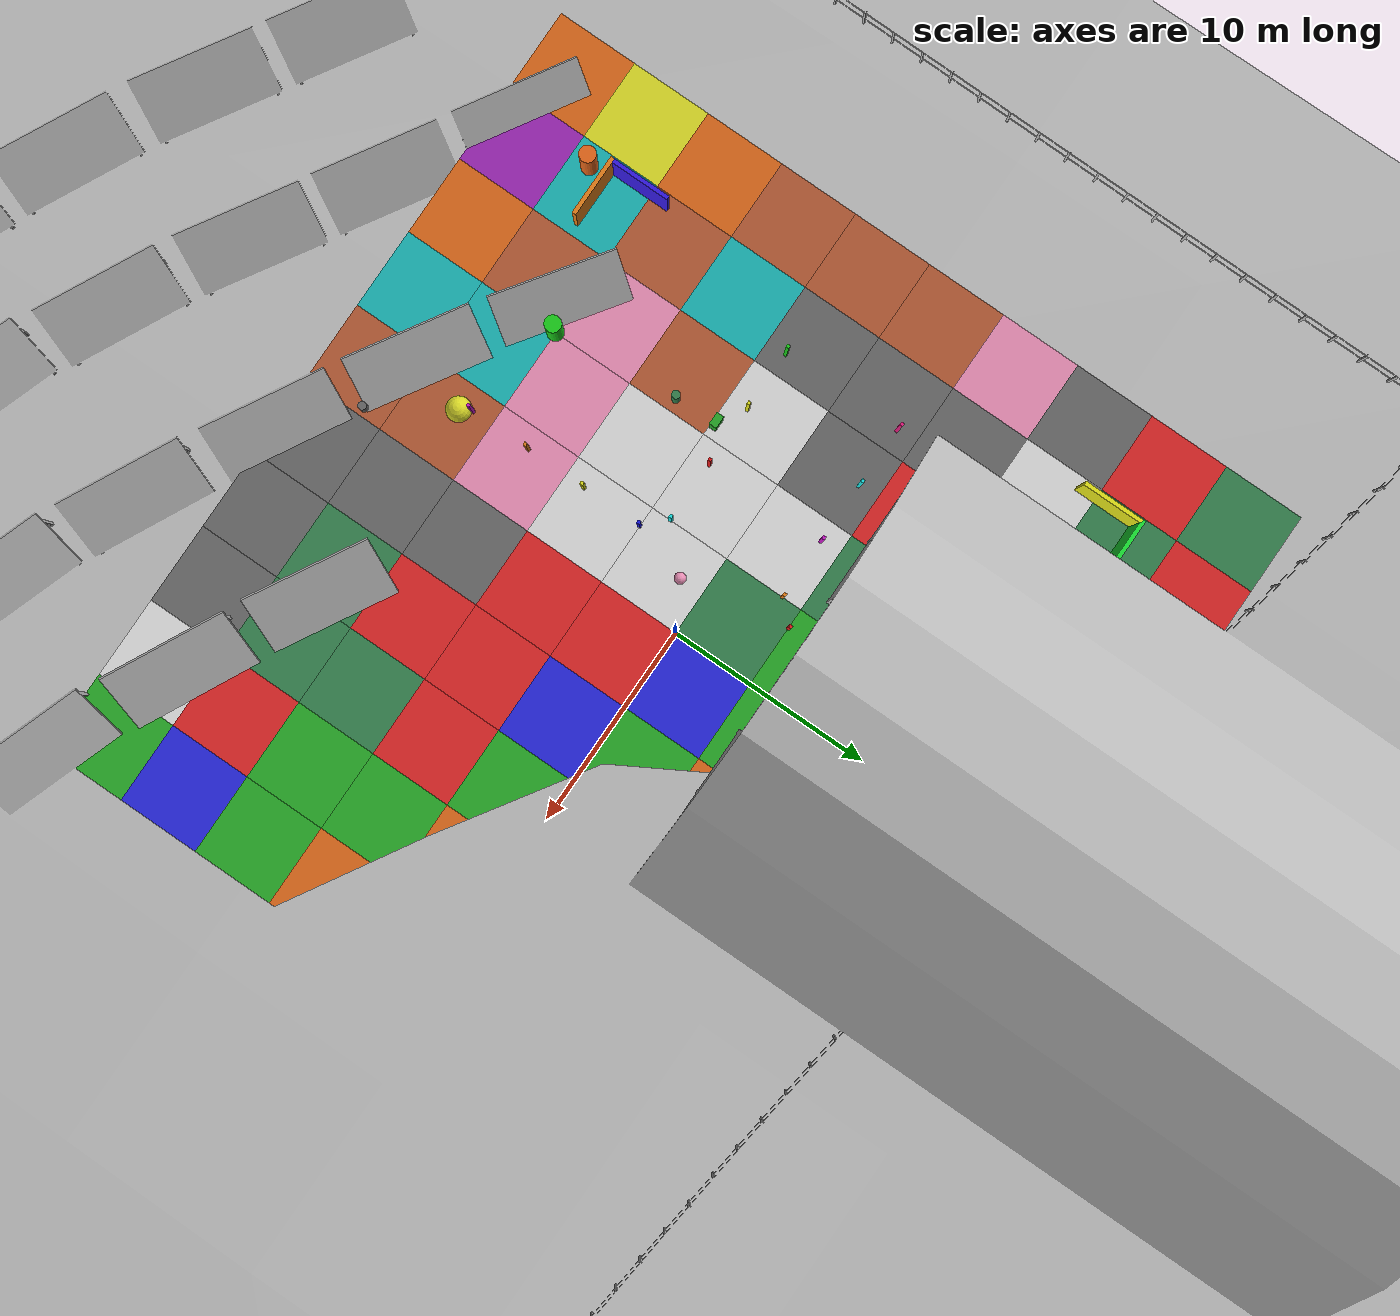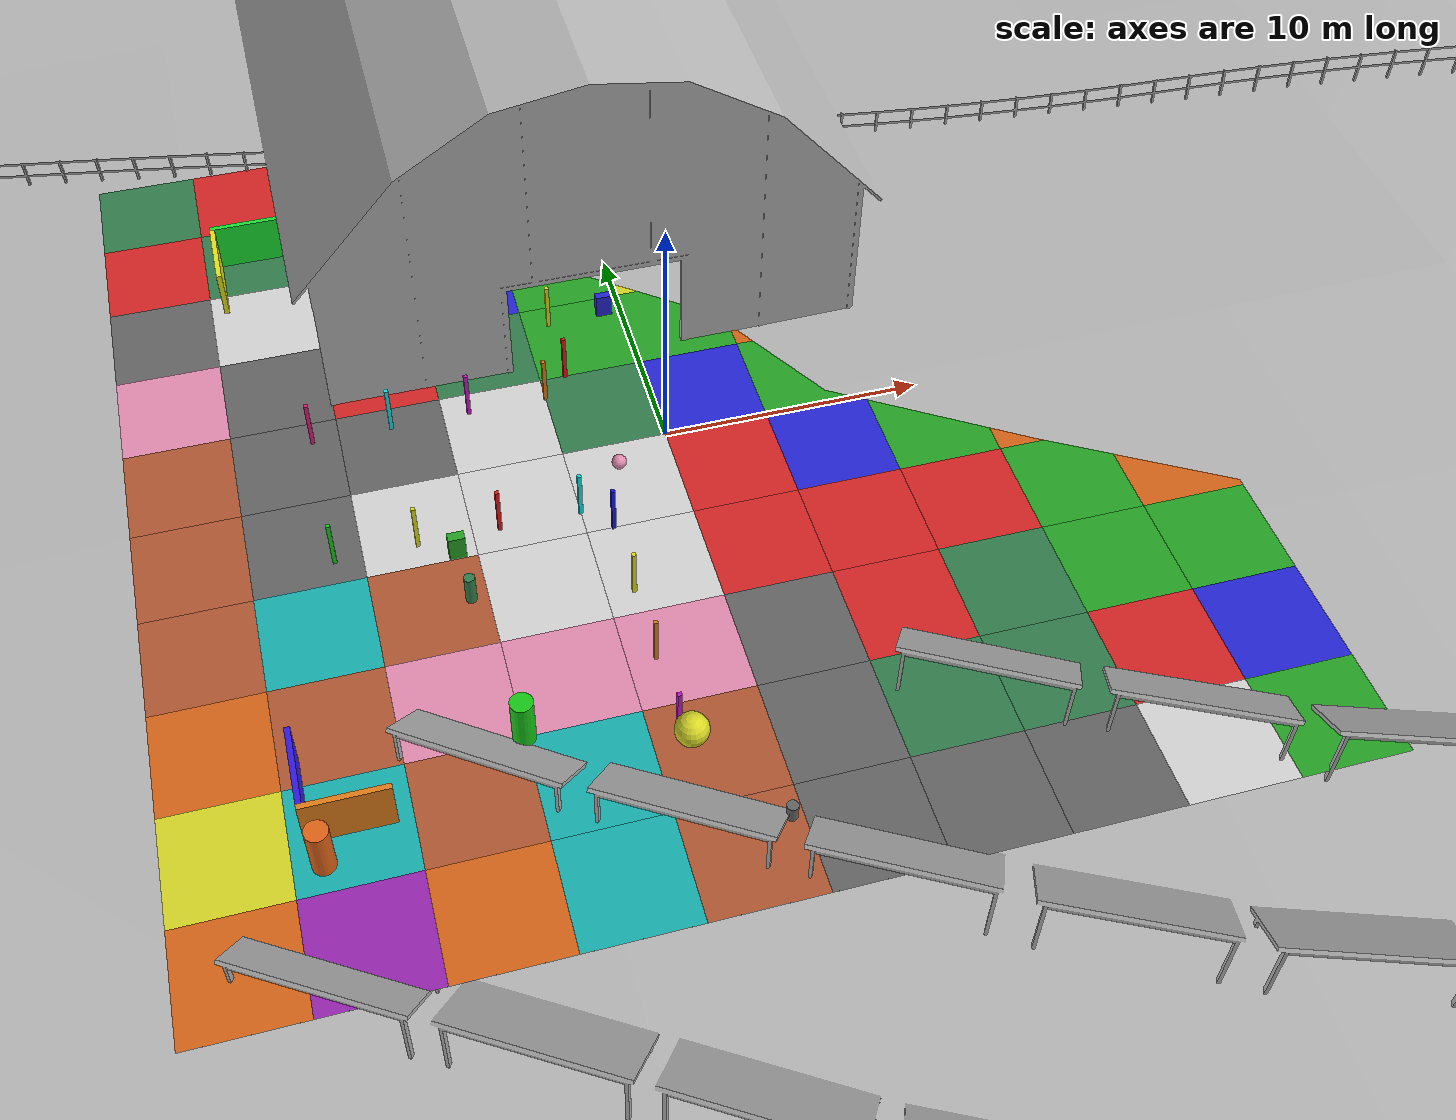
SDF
<sdf version="1.9">
 <world name="default">
  <model name="agriculture_geom">
   <static>true</static>
   <link name="agriculture_world_link">
    <visual name="agriculture_world_link_visual">
     <geometry>
      <mesh><scale>1 1 1</scale><uri>model://cpr_agriculture/meshes/agriculture_world.dae</uri></mesh>
     </geometry>
    </visual>
    <collision name="agriculture_world_link_collision">
     <geometry>
      <mesh><scale>1 1 1</scale><uri>model://cpr_agriculture/meshes/agriculture_world.dae</uri></mesh>
     </geometry>
     <surface><friction><ode><mu>1.0</mu><mu2>1.0</mu2></ode></friction></surface>
    </collision>
   </link>
  </model>
  <model name="vo_ground_texture_patches">
   <static>true</static>
   <link name="tile_1">
    <pose>-18.00 -18.00 0.0002 0 0 0</pose>
    <visual name="v">
     <geometry><box><size>4.0 4.0 0.0004</size></box></geometry>
     <material><ambient>0.85 0.40 0.10 1</ambient><diffuse>0.85 0.40 0.10 1</diffuse></material>
    </visual>
   </link>
   <link name="tile_2">
    <pose>-18.00 -14.00 0.0002 0 0 0</pose>
    <visual name="v">
     <geometry><box><size>4.0 4.0 0.0004</size></box></geometry>
     <material><ambient>0.85 0.85 0.15 1</ambient><diffuse>0.85 0.85 0.15 1</diffuse></material>
    </visual>
   </link>
   <link name="tile_3">
    <pose>-18.00 -10.00 0.0002 0 0 0</pose>
    <visual name="v">
     <geometry><box><size>4.0 4.0 0.0004</size></box></geometry>
     <material><ambient>0.85 0.40 0.10 1</ambient><diffuse>0.85 0.40 0.10 1</diffuse></material>
    </visual>
   </link>
   <link name="tile_4">
    <pose>-18.00 -6.00 0.0002 0 0 0</pose>
    <visual name="v">
     <geometry><box><size>4.0 4.0 0.0004</size></box></geometry>
     <material><ambient>0.70 0.35 0.20 1</ambient><diffuse>0.70 0.35 0.20 1</diffuse></material>
    </visual>
   </link>
   <link name="tile_5">
    <pose>-18.00 -2.00 0.0002 0 0 0</pose>
    <visual name="v">
     <geometry><box><size>4.0 4.0 0.0004</size></box></geometry>
     <material><ambient>0.70 0.35 0.20 1</ambient><diffuse>0.70 0.35 0.20 1</diffuse></material>
    </visual>
   </link>
   <link name="tile_6">
    <pose>-18.00 2.00 0.0002 0 0 0</pose>
    <visual name="v">
     <geometry><box><size>4.0 4.0 0.0004</size></box></geometry>
     <material><ambient>0.70 0.35 0.20 1</ambient><diffuse>0.70 0.35 0.20 1</diffuse></material>
    </visual>
   </link>
   <link name="tile_7">
    <pose>-18.00 6.00 0.0002 0 0 0</pose>
    <visual name="v">
     <geometry><box><size>4.0 4.0 0.0004</size></box></geometry>
     <material><ambient>0.90 0.55 0.70 1</ambient><diffuse>0.90 0.55 0.70 1</diffuse></material>
    </visual>
   </link>
   <link name="tile_8">
    <pose>-18.00 10.00 0.0002 0 0 0</pose>
    <visual name="v">
     <geometry><box><size>4.0 4.0 0.0004</size></box></geometry>
     <material><ambient>0.40 0.40 0.40 1</ambient><diffuse>0.40 0.40 0.40 1</diffuse></material>
    </visual>
   </link>
   <link name="tile_9">
    <pose>-18.00 14.00 0.0002 0 0 0</pose>
    <visual name="v">
     <geometry><box><size>4.0 4.0 0.0004</size></box></geometry>
     <material><ambient>0.85 0.15 0.15 1</ambient><diffuse>0.85 0.15 0.15 1</diffuse></material>
    </visual>
   </link>
   <link name="tile_10">
    <pose>-18.00 18.00 0.0002 0 0 0</pose>
    <visual name="v">
     <geometry><box><size>4.0 4.0 0.0004</size></box></geometry>
     <material><ambient>0.20 0.50 0.30 1</ambient><diffuse>0.20 0.50 0.30 1</diffuse></material>
    </visual>
   </link>
   <link name="tile_11">
    <pose>-14.00 -18.00 0.0002 0 0 0</pose>
    <visual name="v">
     <geometry><box><size>4.0 4.0 0.0004</size></box></geometry>
     <material><ambient>0.60 0.15 0.70 1</ambient><diffuse>0.60 0.15 0.70 1</diffuse></material>
    </visual>
   </link>
   <link name="tile_12">
    <pose>-14.00 -14.00 0.0002 0 0 0</pose>
    <visual name="v">
     <geometry><box><size>4.0 4.0 0.0004</size></box></geometry>
     <material><ambient>0.10 0.70 0.70 1</ambient><diffuse>0.10 0.70 0.70 1</diffuse></material>
    </visual>
   </link>
   <link name="tile_13">
    <pose>-14.00 -10.00 0.0002 0 0 0</pose>
    <visual name="v">
     <geometry><box><size>4.0 4.0 0.0004</size></box></geometry>
     <material><ambient>0.70 0.35 0.20 1</ambient><diffuse>0.70 0.35 0.20 1</diffuse></material>
    </visual>
   </link>
   <link name="tile_14">
    <pose>-14.00 -6.00 0.0002 0 0 0</pose>
    <visual name="v">
     <geometry><box><size>4.0 4.0 0.0004</size></box></geometry>
     <material><ambient>0.10 0.70 0.70 1</ambient><diffuse>0.10 0.70 0.70 1</diffuse></material>
    </visual>
   </link>
   <link name="tile_15">
    <pose>-14.00 -2.00 0.0002 0 0 0</pose>
    <visual name="v">
     <geometry><box><size>4.0 4.0 0.0004</size></box></geometry>
     <material><ambient>0.40 0.40 0.40 1</ambient><diffuse>0.40 0.40 0.40 1</diffuse></material>
    </visual>
   </link>
   <link name="tile_16">
    <pose>-14.00 2.00 0.0002 0 0 0</pose>
    <visual name="v">
     <geometry><box><size>4.0 4.0 0.0004</size></box></geometry>
     <material><ambient>0.40 0.40 0.40 1</ambient><diffuse>0.40 0.40 0.40 1</diffuse></material>
    </visual>
   </link>
   <link name="tile_17">
    <pose>-14.00 6.00 0.0002 0 0 0</pose>
    <visual name="v">
     <geometry><box><size>4.0 4.0 0.0004</size></box></geometry>
     <material><ambient>0.40 0.40 0.40 1</ambient><diffuse>0.40 0.40 0.40 1</diffuse></material>
    </visual>
   </link>
   <link name="tile_18">
    <pose>-14.00 10.00 0.0002 0 0 0</pose>
    <visual name="v">
     <geometry><box><size>4.0 4.0 0.0004</size></box></geometry>
     <material><ambient>0.85 0.85 0.85 1</ambient><diffuse>0.85 0.85 0.85 1</diffuse></material>
    </visual>
   </link>
   <link name="tile_19">
    <pose>-14.00 14.00 0.0002 0 0 0</pose>
    <visual name="v">
     <geometry><box><size>4.0 4.0 0.0004</size></box></geometry>
     <material><ambient>0.20 0.50 0.30 1</ambient><diffuse>0.20 0.50 0.30 1</diffuse></material>
    </visual>
   </link>
   <link name="tile_20">
    <pose>-14.00 18.00 0.0002 0 0 0</pose>
    <visual name="v">
     <geometry><box><size>4.0 4.0 0.0004</size></box></geometry>
     <material><ambient>0.85 0.15 0.15 1</ambient><diffuse>0.85 0.15 0.15 1</diffuse></material>
    </visual>
   </link>
   <link name="tile_21">
    <pose>-10.00 -18.00 0.0002 0 0 0</pose>
    <visual name="v">
     <geometry><box><size>4.0 4.0 0.0004</size></box></geometry>
     <material><ambient>0.85 0.40 0.10 1</ambient><diffuse>0.85 0.40 0.10 1</diffuse></material>
    </visual>
   </link>
   <link name="tile_22">
    <pose>-10.00 -14.00 0.0002 0 0 0</pose>
    <visual name="v">
     <geometry><box><size>4.0 4.0 0.0004</size></box></geometry>
     <material><ambient>0.70 0.35 0.20 1</ambient><diffuse>0.70 0.35 0.20 1</diffuse></material>
    </visual>
   </link>
   <link name="tile_23">
    <pose>-10.00 -10.00 0.0002 0 0 0</pose>
    <visual name="v">
     <geometry><box><size>4.0 4.0 0.0004</size></box></geometry>
     <material><ambient>0.90 0.55 0.70 1</ambient><diffuse>0.90 0.55 0.70 1</diffuse></material>
    </visual>
   </link>
   <link name="tile_24">
    <pose>-10.00 -6.00 0.0002 0 0 0</pose>
    <visual name="v">
     <geometry><box><size>4.0 4.0 0.0004</size></box></geometry>
     <material><ambient>0.70 0.35 0.20 1</ambient><diffuse>0.70 0.35 0.20 1</diffuse></material>
    </visual>
   </link>
   <link name="tile_25">
    <pose>-10.00 -2.00 0.0002 0 0 0</pose>
    <visual name="v">
     <geometry><box><size>4.0 4.0 0.0004</size></box></geometry>
     <material><ambient>0.85 0.85 0.85 1</ambient><diffuse>0.85 0.85 0.85 1</diffuse></material>
    </visual>
   </link>
   <link name="tile_26">
    <pose>-10.00 2.00 0.0002 0 0 0</pose>
    <visual name="v">
     <geometry><box><size>4.0 4.0 0.0004</size></box></geometry>
     <material><ambient>0.40 0.40 0.40 1</ambient><diffuse>0.40 0.40 0.40 1</diffuse></material>
    </visual>
   </link>
   <link name="tile_27">
    <pose>-10.00 6.00 0.0002 0 0 0</pose>
    <visual name="v">
     <geometry><box><size>4.0 4.0 0.0004</size></box></geometry>
     <material><ambient>0.85 0.15 0.15 1</ambient><diffuse>0.85 0.15 0.15 1</diffuse></material>
    </visual>
   </link>
   <link name="tile_28">
    <pose>-10.00 10.00 0.0002 0 0 0</pose>
    <visual name="v">
     <geometry><box><size>4.0 4.0 0.0004</size></box></geometry>
     <material><ambient>0.15 0.65 0.15 1</ambient><diffuse>0.15 0.65 0.15 1</diffuse></material>
    </visual>
   </link>
   <link name="tile_29">
    <pose>-10.00 14.00 0.0002 0 0 0</pose>
    <visual name="v">
     <geometry><box><size>4.0 4.0 0.0004</size></box></geometry>
     <material><ambient>0.15 0.15 0.85 1</ambient><diffuse>0.15 0.15 0.85 1</diffuse></material>
    </visual>
   </link>
   <link name="tile_30">
    <pose>-10.00 18.00 0.0002 0 0 0</pose>
    <visual name="v">
     <geometry><box><size>4.0 4.0 0.0004</size></box></geometry>
     <material><ambient>0.85 0.85 0.15 1</ambient><diffuse>0.85 0.85 0.15 1</diffuse></material>
    </visual>
   </link>
   <link name="tile_31">
    <pose>-6.00 -18.00 0.0002 0 0 0</pose>
    <visual name="v">
     <geometry><box><size>4.0 4.0 0.0004</size></box></geometry>
     <material><ambient>0.10 0.70 0.70 1</ambient><diffuse>0.10 0.70 0.70 1</diffuse></material>
    </visual>
   </link>
   <link name="tile_32">
    <pose>-6.00 -14.00 0.0002 0 0 0</pose>
    <visual name="v">
     <geometry><box><size>4.0 4.0 0.0004</size></box></geometry>
     <material><ambient>0.10 0.70 0.70 1</ambient><diffuse>0.10 0.70 0.70 1</diffuse></material>
    </visual>
   </link>
   <link name="tile_33">
    <pose>-6.00 -10.00 0.0002 0 0 0</pose>
    <visual name="v">
     <geometry><box><size>4.0 4.0 0.0004</size></box></geometry>
     <material><ambient>0.90 0.55 0.70 1</ambient><diffuse>0.90 0.55 0.70 1</diffuse></material>
    </visual>
   </link>
   <link name="tile_34">
    <pose>-6.00 -6.00 0.0002 0 0 0</pose>
    <visual name="v">
     <geometry><box><size>4.0 4.0 0.0004</size></box></geometry>
     <material><ambient>0.85 0.85 0.85 1</ambient><diffuse>0.85 0.85 0.85 1</diffuse></material>
    </visual>
   </link>
   <link name="tile_35">
    <pose>-6.00 -2.00 0.0002 0 0 0</pose>
    <visual name="v">
     <geometry><box><size>4.0 4.0 0.0004</size></box></geometry>
     <material><ambient>0.85 0.85 0.85 1</ambient><diffuse>0.85 0.85 0.85 1</diffuse></material>
    </visual>
   </link>
   <link name="tile_36">
    <pose>-6.00 2.00 0.0002 0 0 0</pose>
    <visual name="v">
     <geometry><box><size>4.0 4.0 0.0004</size></box></geometry>
     <material><ambient>0.85 0.85 0.85 1</ambient><diffuse>0.85 0.85 0.85 1</diffuse></material>
    </visual>
   </link>
   <link name="tile_37">
    <pose>-6.00 6.00 0.0002 0 0 0</pose>
    <visual name="v">
     <geometry><box><size>4.0 4.0 0.0004</size></box></geometry>
     <material><ambient>0.20 0.50 0.30 1</ambient><diffuse>0.20 0.50 0.30 1</diffuse></material>
    </visual>
   </link>
   <link name="tile_38">
    <pose>-6.00 10.00 0.0002 0 0 0</pose>
    <visual name="v">
     <geometry><box><size>4.0 4.0 0.0004</size></box></geometry>
     <material><ambient>0.15 0.15 0.85 1</ambient><diffuse>0.15 0.15 0.85 1</diffuse></material>
    </visual>
   </link>
   <link name="tile_39">
    <pose>-6.00 14.00 0.0002 0 0 0</pose>
    <visual name="v">
     <geometry><box><size>4.0 4.0 0.0004</size></box></geometry>
     <material><ambient>0.15 0.15 0.85 1</ambient><diffuse>0.15 0.15 0.85 1</diffuse></material>
    </visual>
   </link>
   <link name="tile_40">
    <pose>-6.00 18.00 0.0002 0 0 0</pose>
    <visual name="v">
     <geometry><box><size>4.0 4.0 0.0004</size></box></geometry>
     <material><ambient>0.85 0.85 0.15 1</ambient><diffuse>0.85 0.85 0.15 1</diffuse></material>
    </visual>
   </link>
   <link name="tile_41">
    <pose>-2.00 -18.00 0.0002 0 0 0</pose>
    <visual name="v">
     <geometry><box><size>4.0 4.0 0.0004</size></box></geometry>
     <material><ambient>0.70 0.35 0.20 1</ambient><diffuse>0.70 0.35 0.20 1</diffuse></material>
    </visual>
   </link>
   <link name="tile_42">
    <pose>-2.00 -14.00 0.0002 0 0 0</pose>
    <visual name="v">
     <geometry><box><size>4.0 4.0 0.0004</size></box></geometry>
     <material><ambient>0.70 0.35 0.20 1</ambient><diffuse>0.70 0.35 0.20 1</diffuse></material>
    </visual>
   </link>
   <link name="tile_43">
    <pose>-2.00 -10.00 0.0002 0 0 0</pose>
    <visual name="v">
     <geometry><box><size>4.0 4.0 0.0004</size></box></geometry>
     <material><ambient>0.90 0.55 0.70 1</ambient><diffuse>0.90 0.55 0.70 1</diffuse></material>
    </visual>
   </link>
   <link name="tile_44">
    <pose>-2.00 -6.00 0.0002 0 0 0</pose>
    <visual name="v">
     <geometry><box><size>4.0 4.0 0.0004</size></box></geometry>
     <material><ambient>0.85 0.85 0.85 1</ambient><diffuse>0.85 0.85 0.85 1</diffuse></material>
    </visual>
   </link>
   <link name="tile_45">
    <pose>-2.00 -2.00 0.0002 0 0 0</pose>
    <visual name="v">
     <geometry><box><size>4.0 4.0 0.0004</size></box></geometry>
     <material><ambient>0.85 0.85 0.85 1</ambient><diffuse>0.85 0.85 0.85 1</diffuse></material>
    </visual>
   </link>
   <link name="tile_46">
    <pose>-2.00 2.00 0.0002 0 0 0</pose>
    <visual name="v">
     <geometry><box><size>4.0 4.0 0.0004</size></box></geometry>
     <material><ambient>0.20 0.50 0.30 1</ambient><diffuse>0.20 0.50 0.30 1</diffuse></material>
    </visual>
   </link>
   <link name="tile_47">
    <pose>-2.00 6.00 0.0002 0 0 0</pose>
    <visual name="v">
     <geometry><box><size>4.0 4.0 0.0004</size></box></geometry>
     <material><ambient>0.15 0.65 0.15 1</ambient><diffuse>0.15 0.65 0.15 1</diffuse></material>
    </visual>
   </link>
   <link name="tile_48">
    <pose>-2.00 10.00 0.0002 0 0 0</pose>
    <visual name="v">
     <geometry><box><size>4.0 4.0 0.0004</size></box></geometry>
     <material><ambient>0.15 0.65 0.15 1</ambient><diffuse>0.15 0.65 0.15 1</diffuse></material>
    </visual>
   </link>
   <link name="tile_49">
    <pose>-2.00 14.00 0.0002 0 0 0</pose>
    <visual name="v">
     <geometry><box><size>4.0 4.0 0.0004</size></box></geometry>
     <material><ambient>0.85 0.85 0.15 1</ambient><diffuse>0.85 0.85 0.15 1</diffuse></material>
    </visual>
   </link>
   <link name="tile_50">
    <pose>-2.00 18.00 0.0002 0 0 0</pose>
    <visual name="v">
     <geometry><box><size>4.0 4.0 0.0004</size></box></geometry>
     <material><ambient>0.85 0.40 0.10 1</ambient><diffuse>0.85 0.40 0.10 1</diffuse></material>
    </visual>
   </link>
   <link name="tile_51">
    <pose>2.00 -18.00 0.0002 0 0 0</pose>
    <visual name="v">
     <geometry><box><size>4.0 4.0 0.0004</size></box></geometry>
     <material><ambient>0.40 0.40 0.40 1</ambient><diffuse>0.40 0.40 0.40 1</diffuse></material>
    </visual>
   </link>
   <link name="tile_52">
    <pose>2.00 -14.00 0.0002 0 0 0</pose>
    <visual name="v">
     <geometry><box><size>4.0 4.0 0.0004</size></box></geometry>
     <material><ambient>0.40 0.40 0.40 1</ambient><diffuse>0.40 0.40 0.40 1</diffuse></material>
    </visual>
   </link>
   <link name="tile_53">
    <pose>2.00 -10.00 0.0002 0 0 0</pose>
    <visual name="v">
     <geometry><box><size>4.0 4.0 0.0004</size></box></geometry>
     <material><ambient>0.40 0.40 0.40 1</ambient><diffuse>0.40 0.40 0.40 1</diffuse></material>
    </visual>
   </link>
   <link name="tile_54">
    <pose>2.00 -6.00 0.0002 0 0 0</pose>
    <visual name="v">
     <geometry><box><size>4.0 4.0 0.0004</size></box></geometry>
     <material><ambient>0.85 0.15 0.15 1</ambient><diffuse>0.85 0.15 0.15 1</diffuse></material>
    </visual>
   </link>
   <link name="tile_55">
    <pose>2.00 -2.00 0.0002 0 0 0</pose>
    <visual name="v">
     <geometry><box><size>4.0 4.0 0.0004</size></box></geometry>
     <material><ambient>0.85 0.15 0.15 1</ambient><diffuse>0.85 0.15 0.15 1</diffuse></material>
    </visual>
   </link>
   <link name="tile_56">
    <pose>2.00 2.00 0.0002 0 0 0</pose>
    <visual name="v">
     <geometry><box><size>4.0 4.0 0.0004</size></box></geometry>
     <material><ambient>0.15 0.15 0.85 1</ambient><diffuse>0.15 0.15 0.85 1</diffuse></material>
    </visual>
   </link>
   <link name="tile_57">
    <pose>2.00 6.00 0.0002 0 0 0</pose>
    <visual name="v">
     <geometry><box><size>4.0 4.0 0.0004</size></box></geometry>
     <material><ambient>0.15 0.65 0.15 1</ambient><diffuse>0.15 0.65 0.15 1</diffuse></material>
    </visual>
   </link>
   <link name="tile_58">
    <pose>2.00 10.00 0.0002 0 0 0</pose>
    <visual name="v">
     <geometry><box><size>4.0 4.0 0.0004</size></box></geometry>
     <material><ambient>0.85 0.85 0.15 1</ambient><diffuse>0.85 0.85 0.15 1</diffuse></material>
    </visual>
   </link>
   <link name="tile_59">
    <pose>2.00 14.00 0.0002 0 0 0</pose>
    <visual name="v">
     <geometry><box><size>4.0 4.0 0.0004</size></box></geometry>
     <material><ambient>0.85 0.85 0.15 1</ambient><diffuse>0.85 0.85 0.15 1</diffuse></material>
    </visual>
   </link>
   <link name="tile_60">
    <pose>2.00 18.00 0.0002 0 0 0</pose>
    <visual name="v">
     <geometry><box><size>4.0 4.0 0.0004</size></box></geometry>
     <material><ambient>0.10 0.70 0.70 1</ambient><diffuse>0.10 0.70 0.70 1</diffuse></material>
    </visual>
   </link>
   <link name="tile_61">
    <pose>6.00 -18.00 0.0002 0 0 0</pose>
    <visual name="v">
     <geometry><box><size>4.0 4.0 0.0004</size></box></geometry>
     <material><ambient>0.40 0.40 0.40 1</ambient><diffuse>0.40 0.40 0.40 1</diffuse></material>
    </visual>
   </link>
   <link name="tile_62">
    <pose>6.00 -14.00 0.0002 0 0 0</pose>
    <visual name="v">
     <geometry><box><size>4.0 4.0 0.0004</size></box></geometry>
     <material><ambient>0.20 0.50 0.30 1</ambient><diffuse>0.20 0.50 0.30 1</diffuse></material>
    </visual>
   </link>
   <link name="tile_63">
    <pose>6.00 -10.00 0.0002 0 0 0</pose>
    <visual name="v">
     <geometry><box><size>4.0 4.0 0.0004</size></box></geometry>
     <material><ambient>0.85 0.15 0.15 1</ambient><diffuse>0.85 0.15 0.15 1</diffuse></material>
    </visual>
   </link>
   <link name="tile_64">
    <pose>6.00 -6.00 0.0002 0 0 0</pose>
    <visual name="v">
     <geometry><box><size>4.0 4.0 0.0004</size></box></geometry>
     <material><ambient>0.85 0.15 0.15 1</ambient><diffuse>0.85 0.15 0.15 1</diffuse></material>
    </visual>
   </link>
   <link name="tile_65">
    <pose>6.00 -2.00 0.0002 0 0 0</pose>
    <visual name="v">
     <geometry><box><size>4.0 4.0 0.0004</size></box></geometry>
     <material><ambient>0.15 0.15 0.85 1</ambient><diffuse>0.15 0.15 0.85 1</diffuse></material>
    </visual>
   </link>
   <link name="tile_66">
    <pose>6.00 2.00 0.0002 0 0 0</pose>
    <visual name="v">
     <geometry><box><size>4.0 4.0 0.0004</size></box></geometry>
     <material><ambient>0.15 0.65 0.15 1</ambient><diffuse>0.15 0.65 0.15 1</diffuse></material>
    </visual>
   </link>
   <link name="tile_67">
    <pose>6.00 6.00 0.0002 0 0 0</pose>
    <visual name="v">
     <geometry><box><size>4.0 4.0 0.0004</size></box></geometry>
     <material><ambient>0.85 0.40 0.10 1</ambient><diffuse>0.85 0.40 0.10 1</diffuse></material>
    </visual>
   </link>
   <link name="tile_68">
    <pose>6.00 10.00 0.0002 0 0 0</pose>
    <visual name="v">
     <geometry><box><size>4.0 4.0 0.0004</size></box></geometry>
     <material><ambient>0.85 0.85 0.15 1</ambient><diffuse>0.85 0.85 0.15 1</diffuse></material>
    </visual>
   </link>
   <link name="tile_69">
    <pose>6.00 14.00 0.0002 0 0 0</pose>
    <visual name="v">
     <geometry><box><size>4.0 4.0 0.0004</size></box></geometry>
     <material><ambient>0.85 0.40 0.10 1</ambient><diffuse>0.85 0.40 0.10 1</diffuse></material>
    </visual>
   </link>
   <link name="tile_70">
    <pose>6.00 18.00 0.0002 0 0 0</pose>
    <visual name="v">
     <geometry><box><size>4.0 4.0 0.0004</size></box></geometry>
     <material><ambient>0.70 0.35 0.20 1</ambient><diffuse>0.70 0.35 0.20 1</diffuse></material>
    </visual>
   </link>
   <link name="tile_71">
    <pose>10.00 -18.00 0.0002 0 0 0</pose>
    <visual name="v">
     <geometry><box><size>4.0 4.0 0.0004</size></box></geometry>
     <material><ambient>0.40 0.40 0.40 1</ambient><diffuse>0.40 0.40 0.40 1</diffuse></material>
    </visual>
   </link>
   <link name="tile_72">
    <pose>10.00 -14.00 0.0002 0 0 0</pose>
    <visual name="v">
     <geometry><box><size>4.0 4.0 0.0004</size></box></geometry>
     <material><ambient>0.20 0.50 0.30 1</ambient><diffuse>0.20 0.50 0.30 1</diffuse></material>
    </visual>
   </link>
   <link name="tile_73">
    <pose>10.00 -10.00 0.0002 0 0 0</pose>
    <visual name="v">
     <geometry><box><size>4.0 4.0 0.0004</size></box></geometry>
     <material><ambient>0.20 0.50 0.30 1</ambient><diffuse>0.20 0.50 0.30 1</diffuse></material>
    </visual>
   </link>
   <link name="tile_74">
    <pose>10.00 -6.00 0.0002 0 0 0</pose>
    <visual name="v">
     <geometry><box><size>4.0 4.0 0.0004</size></box></geometry>
     <material><ambient>0.85 0.15 0.15 1</ambient><diffuse>0.85 0.15 0.15 1</diffuse></material>
    </visual>
   </link>
   <link name="tile_75">
    <pose>10.00 -2.00 0.0002 0 0 0</pose>
    <visual name="v">
     <geometry><box><size>4.0 4.0 0.0004</size></box></geometry>
     <material><ambient>0.15 0.65 0.15 1</ambient><diffuse>0.15 0.65 0.15 1</diffuse></material>
    </visual>
   </link>
   <link name="tile_76">
    <pose>10.00 2.00 0.0002 0 0 0</pose>
    <visual name="v">
     <geometry><box><size>4.0 4.0 0.0004</size></box></geometry>
     <material><ambient>0.85 0.85 0.15 1</ambient><diffuse>0.85 0.85 0.15 1</diffuse></material>
    </visual>
   </link>
   <link name="tile_77">
    <pose>10.00 6.00 0.0002 0 0 0</pose>
    <visual name="v">
     <geometry><box><size>4.0 4.0 0.0004</size></box></geometry>
     <material><ambient>0.85 0.40 0.10 1</ambient><diffuse>0.85 0.40 0.10 1</diffuse></material>
    </visual>
   </link>
   <link name="tile_78">
    <pose>10.00 10.00 0.0002 0 0 0</pose>
    <visual name="v">
     <geometry><box><size>4.0 4.0 0.0004</size></box></geometry>
     <material><ambient>0.60 0.15 0.70 1</ambient><diffuse>0.60 0.15 0.70 1</diffuse></material>
    </visual>
   </link>
   <link name="tile_79">
    <pose>10.00 14.00 0.0002 0 0 0</pose>
    <visual name="v">
     <geometry><box><size>4.0 4.0 0.0004</size></box></geometry>
     <material><ambient>0.70 0.35 0.20 1</ambient><diffuse>0.70 0.35 0.20 1</diffuse></material>
    </visual>
   </link>
   <link name="tile_80">
    <pose>10.00 18.00 0.0002 0 0 0</pose>
    <visual name="v">
     <geometry><box><size>4.0 4.0 0.0004</size></box></geometry>
     <material><ambient>0.70 0.35 0.20 1</ambient><diffuse>0.70 0.35 0.20 1</diffuse></material>
    </visual>
   </link>
   <link name="tile_81">
    <pose>14.00 -18.00 0.0002 0 0 0</pose>
    <visual name="v">
     <geometry><box><size>4.0 4.0 0.0004</size></box></geometry>
     <material><ambient>0.85 0.85 0.85 1</ambient><diffuse>0.85 0.85 0.85 1</diffuse></material>
    </visual>
   </link>
   <link name="tile_82">
    <pose>14.00 -14.00 0.0002 0 0 0</pose>
    <visual name="v">
     <geometry><box><size>4.0 4.0 0.0004</size></box></geometry>
     <material><ambient>0.85 0.15 0.15 1</ambient><diffuse>0.85 0.15 0.15 1</diffuse></material>
    </visual>
   </link>
   <link name="tile_83">
    <pose>14.00 -10.00 0.0002 0 0 0</pose>
    <visual name="v">
     <geometry><box><size>4.0 4.0 0.0004</size></box></geometry>
     <material><ambient>0.15 0.65 0.15 1</ambient><diffuse>0.15 0.65 0.15 1</diffuse></material>
    </visual>
   </link>
   <link name="tile_84">
    <pose>14.00 -6.00 0.0002 0 0 0</pose>
    <visual name="v">
     <geometry><box><size>4.0 4.0 0.0004</size></box></geometry>
     <material><ambient>0.15 0.65 0.15 1</ambient><diffuse>0.15 0.65 0.15 1</diffuse></material>
    </visual>
   </link>
   <link name="tile_85">
    <pose>14.00 -2.00 0.0002 0 0 0</pose>
    <visual name="v">
     <geometry><box><size>4.0 4.0 0.0004</size></box></geometry>
     <material><ambient>0.85 0.40 0.10 1</ambient><diffuse>0.85 0.40 0.10 1</diffuse></material>
    </visual>
   </link>
   <link name="tile_86">
    <pose>14.00 2.00 0.0002 0 0 0</pose>
    <visual name="v">
     <geometry><box><size>4.0 4.0 0.0004</size></box></geometry>
     <material><ambient>0.85 0.40 0.10 1</ambient><diffuse>0.85 0.40 0.10 1</diffuse></material>
    </visual>
   </link>
   <link name="tile_87">
    <pose>14.00 6.00 0.0002 0 0 0</pose>
    <visual name="v">
     <geometry><box><size>4.0 4.0 0.0004</size></box></geometry>
     <material><ambient>0.10 0.70 0.70 1</ambient><diffuse>0.10 0.70 0.70 1</diffuse></material>
    </visual>
   </link>
   <link name="tile_88">
    <pose>14.00 10.00 0.0002 0 0 0</pose>
    <visual name="v">
     <geometry><box><size>4.0 4.0 0.0004</size></box></geometry>
     <material><ambient>0.70 0.35 0.20 1</ambient><diffuse>0.70 0.35 0.20 1</diffuse></material>
    </visual>
   </link>
   <link name="tile_89">
    <pose>14.00 14.00 0.0002 0 0 0</pose>
    <visual name="v">
     <geometry><box><size>4.0 4.0 0.0004</size></box></geometry>
     <material><ambient>0.90 0.55 0.70 1</ambient><diffuse>0.90 0.55 0.70 1</diffuse></material>
    </visual>
   </link>
   <link name="tile_90">
    <pose>14.00 18.00 0.0002 0 0 0</pose>
    <visual name="v">
     <geometry><box><size>4.0 4.0 0.0004</size></box></geometry>
     <material><ambient>0.70 0.35 0.20 1</ambient><diffuse>0.70 0.35 0.20 1</diffuse></material>
    </visual>
   </link>
   <link name="tile_91">
    <pose>18.00 -18.00 0.0002 0 0 0</pose>
    <visual name="v">
     <geometry><box><size>4.0 4.0 0.0004</size></box></geometry>
     <material><ambient>0.15 0.65 0.15 1</ambient><diffuse>0.15 0.65 0.15 1</diffuse></material>
    </visual>
   </link>
   <link name="tile_92">
    <pose>18.00 -14.00 0.0002 0 0 0</pose>
    <visual name="v">
     <geometry><box><size>4.0 4.0 0.0004</size></box></geometry>
     <material><ambient>0.15 0.15 0.85 1</ambient><diffuse>0.15 0.15 0.85 1</diffuse></material>
    </visual>
   </link>
   <link name="tile_93">
    <pose>18.00 -10.00 0.0002 0 0 0</pose>
    <visual name="v">
     <geometry><box><size>4.0 4.0 0.0004</size></box></geometry>
     <material><ambient>0.15 0.65 0.15 1</ambient><diffuse>0.15 0.65 0.15 1</diffuse></material>
    </visual>
   </link>
   <link name="tile_94">
    <pose>18.00 -6.00 0.0002 0 0 0</pose>
    <visual name="v">
     <geometry><box><size>4.0 4.0 0.0004</size></box></geometry>
     <material><ambient>0.85 0.40 0.10 1</ambient><diffuse>0.85 0.40 0.10 1</diffuse></material>
    </visual>
   </link>
   <link name="tile_95">
    <pose>18.00 -2.00 0.0002 0 0 0</pose>
    <visual name="v">
     <geometry><box><size>4.0 4.0 0.0004</size></box></geometry>
     <material><ambient>0.60 0.15 0.70 1</ambient><diffuse>0.60 0.15 0.70 1</diffuse></material>
    </visual>
   </link>
   <link name="tile_96">
    <pose>18.00 2.00 0.0002 0 0 0</pose>
    <visual name="v">
     <geometry><box><size>4.0 4.0 0.0004</size></box></geometry>
     <material><ambient>0.85 0.40 0.10 1</ambient><diffuse>0.85 0.40 0.10 1</diffuse></material>
    </visual>
   </link>
   <link name="tile_97">
    <pose>18.00 6.00 0.0002 0 0 0</pose>
    <visual name="v">
     <geometry><box><size>4.0 4.0 0.0004</size></box></geometry>
     <material><ambient>0.60 0.15 0.70 1</ambient><diffuse>0.60 0.15 0.70 1</diffuse></material>
    </visual>
   </link>
   <link name="tile_98">
    <pose>18.00 10.00 0.0002 0 0 0</pose>
    <visual name="v">
     <geometry><box><size>4.0 4.0 0.0004</size></box></geometry>
     <material><ambient>0.70 0.35 0.20 1</ambient><diffuse>0.70 0.35 0.20 1</diffuse></material>
    </visual>
   </link>
   <link name="tile_99">
    <pose>18.00 14.00 0.0002 0 0 0</pose>
    <visual name="v">
     <geometry><box><size>4.0 4.0 0.0004</size></box></geometry>
     <material><ambient>0.90 0.55 0.70 1</ambient><diffuse>0.90 0.55 0.70 1</diffuse></material>
    </visual>
   </link>
   <link name="tile_100">
    <pose>18.00 18.00 0.0002 0 0 0</pose>
    <visual name="v">
     <geometry><box><size>4.0 4.0 0.0004</size></box></geometry>
     <material><ambient>0.40 0.40 0.40 1</ambient><diffuse>0.40 0.40 0.40 1</diffuse></material>
    </visual>
   </link>
  </model>
  <model name="blue_box1">
   <static>true</static>
   <pose>-12 15 0.3 0 0 0</pose>
   <link name="link">
    <visual name="visual">
     <geometry><box><size>1.0 1.0 1.0</size></box></geometry>
     <material><ambient>0.10 0.10 0.90 1</ambient><diffuse>0.10 0.10 0.90 1</diffuse></material>
    </visual>
    <collision name="collision"><geometry><box><size>1.0 1.0 1.0</size></box></geometry></collision>
   </link>
  </model>
  <model name="green_cyl2">
   <static>true</static>
   <pose>-8 -12 1.0 0 0 0</pose>
   <link name="link">
    <visual name="visual">
     <geometry><cylinder><radius>0.4</radius><length>2.0</length></cylinder></geometry>
     <material><ambient>0.10 0.80 0.10 1</ambient><diffuse>0.10 0.80 0.10 1</diffuse></material>
    </visual>
    <collision name="collision">
     <geometry><cylinder><radius>0.4</radius><length>2.0</length></cylinder></geometry>
    </collision>
   </link>
  </model>
  <model name="orange_cyl">
   <static>true</static>
   <pose>-15 -15 1.0 0 0 0</pose>
   <link name="link">
    <visual name="visual">
     <geometry><cylinder><radius>0.4</radius><length>2.0</length></cylinder></geometry>
     <material><ambient>0.90 0.40 0.10 1</ambient><diffuse>0.90 0.40 0.10 1</diffuse></material>
    </visual>
    <collision name="collision">
     <geometry><cylinder><radius>0.4</radius><length>2.0</length></cylinder></geometry>
    </collision>
   </link>
  </model>
  <model name="fence_n01">
   <static>true</static>
   <pose>-3 4 1.0 0 0 0</pose>
   <link name="l">
    <visual name="v">
     <geometry><box><size>0.15 0.15 2.0</size></box></geometry>
     <material><ambient>0.9 0.1 0.1 1</ambient><diffuse>0.9 0.1 0.1 1</diffuse></material>
    </visual>
    <collision name="c"><geometry><box><size>0.15 0.15 2.0</size></box></geometry></collision>
   </link>
  </model>
  <model name="fence_n02">
   <static>true</static>
   <pose>-3 7 1.0 0 0 0</pose>
   <link name="l">
    <visual name="v">
     <geometry><box><size>0.15 0.15 2.0</size></box></geometry>
     <material><ambient>0.9 0.9 0.1 1</ambient><diffuse>0.9 0.9 0.1 1</diffuse></material>
    </visual>
    <collision name="c"><geometry><box><size>0.15 0.15 2.0</size></box></geometry></collision>
   </link>
  </model>
  <model name="fence_n03">
   <static>true</static>
   <pose>-3 10 1.0 0 0 0</pose>
   <link name="l">
    <visual name="v">
     <geometry><box><size>0.15 0.15 2.0</size></box></geometry>
     <material><ambient>0.1 0.1 0.9 1</ambient><diffuse>0.1 0.1 0.9 1</diffuse></material>
    </visual>
    <collision name="c"><geometry><box><size>0.15 0.15 2.0</size></box></geometry></collision>
   </link>
  </model>
  <model name="fence_n04">
   <static>true</static>
   <pose>-3 13 1.0 0 0 0</pose>
   <link name="l">
    <visual name="v">
     <geometry><box><size>0.15 0.15 2.0</size></box></geometry>
     <material><ambient>0.1 0.8 0.1 1</ambient><diffuse>0.1 0.8 0.1 1</diffuse></material>
    </visual>
    <collision name="c"><geometry><box><size>0.15 0.15 2.0</size></box></geometry></collision>
   </link>
  </model>
  <model name="fence_s01">
   <static>true</static>
   <pose>-3 -4 1.0 0 0 0</pose>
   <link name="l">
    <visual name="v">
     <geometry><box><size>0.15 0.15 2.0</size></box></geometry>
     <material><ambient>0.1 0.1 0.9 1</ambient><diffuse>0.1 0.1 0.9 1</diffuse></material>
    </visual>
    <collision name="c"><geometry><box><size>0.15 0.15 2.0</size></box></geometry></collision>
   </link>
  </model>
  <model name="fence_s02">
   <static>true</static>
   <pose>-3 -7 1.0 0 0 0</pose>
   <link name="l">
    <visual name="v">
     <geometry><box><size>0.15 0.15 2.0</size></box></geometry>
     <material><ambient>0.9 0.9 0.1 1</ambient><diffuse>0.9 0.9 0.1 1</diffuse></material>
    </visual>
    <collision name="c"><geometry><box><size>0.15 0.15 2.0</size></box></geometry></collision>
   </link>
  </model>
  <model name="fence_s03">
   <static>true</static>
   <pose>-3 -10 1.0 0 0 0</pose>
   <link name="l">
    <visual name="v">
     <geometry><box><size>0.15 0.15 2.0</size></box></geometry>
     <material><ambient>0.9 0.5 0.1 1</ambient><diffuse>0.9 0.5 0.1 1</diffuse></material>
    </visual>
    <collision name="c"><geometry><box><size>0.15 0.15 2.0</size></box></geometry></collision>
   </link>
  </model>
  <model name="fence_s04">
   <static>true</static>
   <pose>-3 -13 1.0 0 0 0</pose>
   <link name="l">
    <visual name="v">
     <geometry><box><size>0.15 0.15 2.0</size></box></geometry>
     <material><ambient>0.8 0.1 0.8 1</ambient><diffuse>0.8 0.1 0.8 1</diffuse></material>
    </visual>
    <collision name="c"><geometry><box><size>0.15 0.15 2.0</size></box></geometry></collision>
   </link>
  </model>
  <model name="fence_w01">
   <static>true</static>
   <pose>-4 -3 1.0 0 0 0</pose>
   <link name="l">
    <visual name="v">
     <geometry><box><size>0.15 0.15 2.0</size></box></geometry>
     <material><ambient>0.1 0.9 0.9 1</ambient><diffuse>0.1 0.9 0.9 1</diffuse></material>
    </visual>
    <collision name="c"><geometry><box><size>0.15 0.15 2.0</size></box></geometry></collision>
   </link>
  </model>
  <model name="fence_w02">
   <static>true</static>
   <pose>-7 -3 1.0 0 0 0</pose>
   <link name="l">
    <visual name="v">
     <geometry><box><size>0.15 0.15 2.0</size></box></geometry>
     <material><ambient>0.9 0.1 0.1 1</ambient><diffuse>0.9 0.1 0.1 1</diffuse></material>
    </visual>
    <collision name="c"><geometry><box><size>0.15 0.15 2.0</size></box></geometry></collision>
   </link>
  </model>
  <model name="fence_w03">
   <static>true</static>
   <pose>-10 -3 1.0 0 0 0</pose>
   <link name="l">
    <visual name="v">
     <geometry><box><size>0.15 0.15 2.0</size></box></geometry>
     <material><ambient>0.9 0.9 0.1 1</ambient><diffuse>0.9 0.9 0.1 1</diffuse></material>
    </visual>
    <collision name="c"><geometry><box><size>0.15 0.15 2.0</size></box></geometry></collision>
   </link>
  </model>
  <model name="fence_w04">
   <static>true</static>
   <pose>-13 -3 1.0 0 0 0</pose>
   <link name="l">
    <visual name="v">
     <geometry><box><size>0.15 0.15 2.0</size></box></geometry>
     <material><ambient>0.1 0.8 0.1 1</ambient><diffuse>0.1 0.8 0.1 1</diffuse></material>
    </visual>
    <collision name="c"><geometry><box><size>0.15 0.15 2.0</size></box></geometry></collision>
   </link>
  </model>
  <model name="fence_w05">
   <static>true</static>
   <pose>-4 3 1.0 0 0 0</pose>
   <link name="l">
    <visual name="v">
     <geometry><box><size>0.15 0.15 2.0</size></box></geometry>
     <material><ambient>0.9 0.5 0.1 1</ambient><diffuse>0.9 0.5 0.1 1</diffuse></material>
    </visual>
    <collision name="c"><geometry><box><size>0.15 0.15 2.0</size></box></geometry></collision>
   </link>
  </model>
  <model name="fence_w06">
   <static>true</static>
   <pose>-7 3 1.0 0 0 0</pose>
   <link name="l">
    <visual name="v">
     <geometry><box><size>0.15 0.15 2.0</size></box></geometry>
     <material><ambient>0.8 0.1 0.8 1</ambient><diffuse>0.8 0.1 0.8 1</diffuse></material>
    </visual>
    <collision name="c"><geometry><box><size>0.15 0.15 2.0</size></box></geometry></collision>
   </link>
  </model>
  <model name="fence_w07">
   <static>true</static>
   <pose>-10 3 1.0 0 0 0</pose>
   <link name="l">
    <visual name="v">
     <geometry><box><size>0.15 0.15 2.0</size></box></geometry>
     <material><ambient>0.1 0.9 0.9 1</ambient><diffuse>0.1 0.9 0.9 1</diffuse></material>
    </visual>
    <collision name="c"><geometry><box><size>0.15 0.15 2.0</size></box></geometry></collision>
   </link>
  </model>
  <model name="fence_w08">
   <static>true</static>
   <pose>-13 3 1.0 0 0 0</pose>
   <link name="l">
    <visual name="v">
     <geometry><box><size>0.15 0.15 2.0</size></box></geometry>
     <material><ambient>0.9 0.1 0.5 1</ambient><diffuse>0.9 0.1 0.5 1</diffuse></material>
    </visual>
    <collision name="c"><geometry><box><size>0.15 0.15 2.0</size></box></geometry></collision>
   </link>
  </model>
  <model name="wall_corner_NW">
   <static>true</static>
   <pose>-14 14 0 0 0 0</pose>
   <link name="wall_a">
    <pose>0 0 1.0 0 0 0</pose>
    <visual name="v">
     <geometry><box><size>3.0 0.2 2.0</size></box></geometry>
     <material><ambient>0.1 0.9 0.2 1</ambient><diffuse>0.1 0.9 0.2 1</diffuse></material>
    </visual>
    <collision name="c"><geometry><box><size>3.0 0.2 2.0</size></box></geometry></collision>
   </link>
   <link name="wall_b">
    <pose>-1.4 -1.5 1.0 0 0 0</pose>
    <visual name="v">
     <geometry><box><size>0.2 3.0 2.0</size></box></geometry>
     <material><ambient>0.9 0.9 0.1 1</ambient><diffuse>0.9 0.9 0.1 1</diffuse></material>
    </visual>
    <collision name="c"><geometry><box><size>0.2 3.0 2.0</size></box></geometry></collision>
   </link>
  </model>
  <model name="wall_corner_SW">
   <static>true</static>
   <pose>-14 -14 0 0 0 0</pose>
   <link name="wall_a">
    <pose>0 0 1.0 0 0 0</pose>
    <visual name="v">
     <geometry><box><size>3.0 0.2 2.0</size></box></geometry>
     <material><ambient>0.9 0.5 0.1 1</ambient><diffuse>0.9 0.5 0.1 1</diffuse></material>
    </visual>
    <collision name="c"><geometry><box><size>3.0 0.2 2.0</size></box></geometry></collision>
   </link>
   <link name="wall_b">
    <pose>-1.4 1.5 1.0 0 0 0</pose>
    <visual name="v">
     <geometry><box><size>0.2 3.0 2.0</size></box></geometry>
     <material><ambient>0.2 0.1 0.9 1</ambient><diffuse>0.2 0.1 0.9 1</diffuse></material>
    </visual>
    <collision name="c"><geometry><box><size>0.2 3.0 2.0</size></box></geometry></collision>
   </link>
  </model>
  <model name="obj_3">
   <static>true</static>
   <pose>-0.4 -17.1 0.3 0 0 0</pose>
   <link name="link">
    <visual name="visual">
     <geometry><cylinder><radius>0.2</radius><length>0.69</length></cylinder></geometry>
     <material><ambient>0.40 0.40 0.40 1</ambient><diffuse>0.40 0.40 0.40 1</diffuse></material>
    </visual>
    <collision name="collision">
     <geometry><cylinder><radius>0.2</radius><length>0.69</length></cylinder></geometry>
    </collision>
   </link>
  </model>
  <model name="obj_5">
   <static>true</static>
   <pose>-0.7 7.1 0.5 0 0 0</pose>
   <link name="link">
    <visual name="visual">
     <geometry><box><size>0.63 0.30 0.99</size></box></geometry>
     <material><ambient>0.15 0.15 0.85 1</ambient><diffuse>0.15 0.15 0.85 1</diffuse></material>
    </visual>
    <collision name="collision"><geometry><box><size>0.63 0.30 0.99</size></box></geometry></collision>
   </link>
  </model>
  <model name="obj_7">
   <static>true</static>
   <pose>-1.6 16.5 0.5 0 0 0</pose>
   <link name="link">
    <visual name="visual">
     <geometry><box><size>0.42 0.72 1.02</size></box></geometry>
     <material><ambient>0.90 0.55 0.70 1</ambient><diffuse>0.90 0.55 0.70 1</diffuse></material>
    </visual>
    <collision name="collision"><geometry><box><size>0.42 0.72 1.02</size></box></geometry></collision>
   </link>
  </model>
  <model name="obj_16">
   <static>true</static>
   <pose>-9.1 13.7 0.5 0 0 0</pose>
   <link name="link">
    <visual name="visual">
     <geometry><cylinder><radius>0.2</radius><length>1.09</length></cylinder></geometry>
     <material><ambient>0.85 0.15 0.15 1</ambient><diffuse>0.85 0.15 0.15 1</diffuse></material>
    </visual>
    <collision name="collision">
     <geometry><cylinder><radius>0.2</radius><length>1.09</length></cylinder></geometry>
    </collision>
   </link>
  </model>
  <model name="obj_19">
   <static>true</static>
   <pose>-8.6 -5.9 0.6 0 0 0</pose>
   <link name="link">
    <visual name="visual">
     <geometry><cylinder><radius>0.2</radius><length>1.21</length></cylinder></geometry>
     <material><ambient>0.20 0.50 0.30 1</ambient><diffuse>0.20 0.50 0.30 1</diffuse></material>
    </visual>
    <collision name="collision">
     <geometry><cylinder><radius>0.2</radius><length>1.21</length></cylinder></geometry>
    </collision>
   </link>
  </model>
  <model name="obj_20">
   <static>true</static>
   <pose>-2.1 -1.2 0.3 0 0 0</pose>
   <link name="link">
    <visual name="visual">
     <geometry><sphere><radius>0.28</radius></sphere></geometry>
     <material><ambient>0.90 0.55 0.70 1</ambient><diffuse>0.90 0.55 0.70 1</diffuse></material>
    </visual>
    <collision name="collision"><geometry><sphere><radius>0.28</radius></sphere></geometry></collision>
   </link>
  </model>
  <model name="obj_21">
   <static>true</static>
   <pose>-8.7 -3.8 0.5 0 0 0</pose>
   <link name="link">
    <visual name="visual">
     <geometry><box><size>0.62 0.37 1.08</size></box></geometry>
     <material><ambient>0.15 0.65 0.15 1</ambient><diffuse>0.15 0.65 0.15 1</diffuse></material>
    </visual>
    <collision name="collision"><geometry><box><size>0.62 0.37 1.08</size></box></geometry></collision>
   </link>
  </model>
  <model name="obj_26">
   <static>true</static>
   <pose>-2.7 -13.5 0.6 0 0 0</pose>
   <link name="link">
    <visual name="visual">
     <geometry><sphere><radius>0.60</radius></sphere></geometry>
     <material><ambient>0.85 0.85 0.15 1</ambient><diffuse>0.85 0.85 0.15 1</diffuse></material>
    </visual>
    <collision name="collision"><geometry><sphere><radius>0.60</radius></sphere></geometry></collision>
   </link>
  </model>
 </world>
</sdf>
